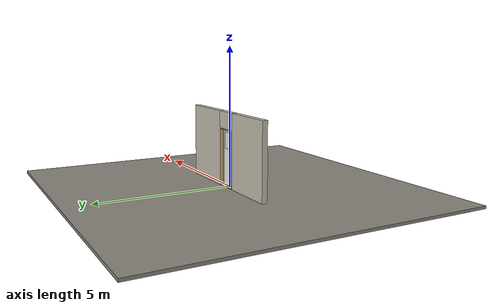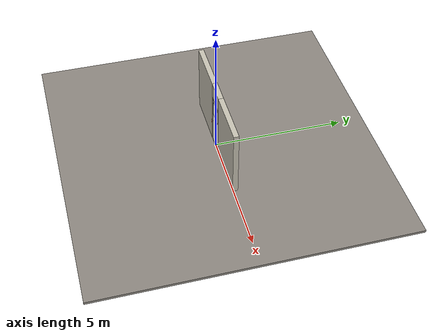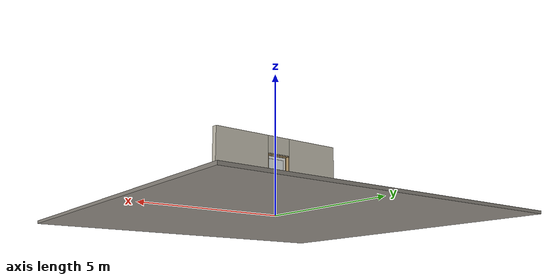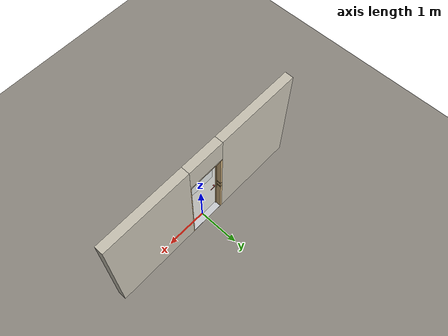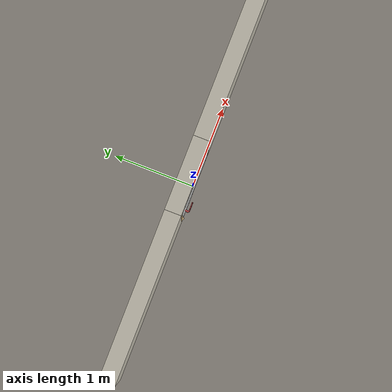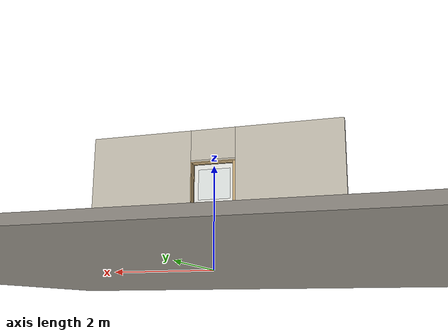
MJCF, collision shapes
<?xml version="1.0" ?>
<mujoco model="db0304_swing_single_minimal">
  <compiler angle="radian" meshdir="../../hardware" texturedir="../../textures" autolimits="true" inertiafromgeom="false"/>
  <option timestep="0.002" integrator="implicitfast" cone="elliptic" impratio="10" noslip_iterations="3">
    <flag multiccd="enable"/>
  </option>
  <size memory="16M"/>
  <default>
    <geom condim="4" solref="0.005 1" solimp="0.95 0.99 0.001"/>
    <joint solreflimit="0.005 1" solimplimit="0.95 0.99 0.001"/>
    <tendon solreflimit="0.005 1"/>
    <equality solref="0.002 1"/>
  </default>
  <visual>
    <headlight ambient="0.4 0.4 0.4" diffuse="0.7 0.7 0.7" specular="0.2 0.2 0.2"/>
    <quality shadowsize="4096"/>
    <map znear="0.01" zfar="60"/>
  </visual>
  <asset>
    <mesh name="lever_57205841c3" file="lever_57205841c3.obj"/>
    <material name="mat_floor" rgba="0.55 0.53 0.5 1" specular="0.2" shininess="0.15" reflectance="0"/>
    <material name="mat_wall" rgba="0.78 0.76 0.7 1" specular="0.2" shininess="0.1" reflectance="0"/>
    <material name="mat_leaf" rgba="0.93 0.93 0.91 1" specular="0.2" shininess="0.49" reflectance="0"/>
    <material name="mat_glass" rgba="0.85 0.92 0.95 0.25" specular="0.2" shininess="0.95" reflectance="0.1"/>
    <material name="mat_hinge" rgba="0.65 0.66 0.68 1" specular="0.74" shininess="0.5" reflectance="0.36"/>
    <material name="mat_op_black_matte_metal" rgba="0.05 0.05 0.05 1" specular="0.38" shininess="0.3" reflectance="0.12"/>
    <material name="mat_trim" rgba="0.85 0.66 0.3 1" specular="0.8" shininess="0.75" reflectance="0.4"/>
    <material name="mat_bolt" rgba="0.85 0.66 0.3 1" specular="0.8" shininess="0.75" reflectance="0.4"/>
    <material name="mat_night_latch" rgba="0.55 0.42 0.22 1" specular="0.74" shininess="0.45" reflectance="0.36"/>
    <material name="mat_deadbolt" rgba="0.85 0.66 0.3 1" specular="0.8" shininess="0.75" reflectance="0.4"/>
    <material name="mat_frame" rgba="0.82 0.7 0.5 1" specular="0.2" shininess="0.45" reflectance="0"/>
    <material name="mat_threshold" rgba="0.8 0.81 0.83 1" specular="0.8" shininess="0.6" reflectance="0.4"/>
    <material name="mat_numbers" rgba="0.05 0.05 0.05 1" specular="0.38" shininess="0.3" reflectance="0.12"/>
    <material name="mat_wreath" rgba="0.12 0.3 0.12 1" specular="0.2" shininess="0.05" reflectance="0"/>
    <material name="mat_wreath_hook" rgba="0.85 0.66 0.3 1" specular="0.8" shininess="0.75" reflectance="0.4"/>
    <texture name="skybox" type="skybox" builtin="gradient" rgb1="0.6 0.7 0.85" rgb2="0.9 0.92 0.95" width="256" height="256"/>
  </asset>
  <worldbody>
    <light name="sun" pos="1.5 -2.5 4" dir="-0.3 0.5 -0.8" directional="true" diffuse="0.8 0.8 0.8" specular="0.3 0.3 0.3" castshadow="true"/>
    <light name="fill" pos="-1.5 2.5 3" dir="0.3 -0.5 -0.7" directional="true" diffuse="0.35 0.35 0.4" castshadow="false"/>
    <camera name="robot_view" pos="0 -2.471187 1.734312" xyaxes="1 0 0 0 0.26963 0.962964" fovy="52"/>
    <camera name="far_view" pos="0 2.613187 1.734312" xyaxes="-1 0 0 0 -0.26963 0.962964" fovy="52"/>
    <camera name="iso" pos="-1.932062 -2.064437 2.141063" xyaxes="0.741536 -0.670913 0 0.242917 0.268487 0.932151" fovy="46"/>
    <camera name="detail_handle" pos="-0.0595 -0.877 1.245" xyaxes="0.97561 0.219512 0 -0.070934 0.315262 0.94635" fovy="38"/>
    <geom name="floor" type="box" size="6 6 0.05" pos="0 0 -0.05" material="mat_floor" group="0" contype="1" conaffinity="1" friction="0.8 0.005 0.0001" density="2400"/>
    <geom name="wall_left" type="box" size="1.02025 0.1 1.35" pos="-1.47975 0.071 1.35" material="mat_wall" group="0" contype="1" conaffinity="1" friction="0.6 0.005 0.0001" density="800"/>
    <geom name="wall_right" type="box" size="1.03525 0.1 1.35" pos="1.46475 0.071 1.35" material="mat_wall" group="0" contype="1" conaffinity="1" friction="0.6 0.005 0.0001" density="800"/>
    <geom name="wall_header" type="box" size="0.4445 0.1 0.303" pos="-0.015 0.071 2.397" material="mat_wall" group="0" contype="1" conaffinity="1" friction="0.6 0.005 0.0001" density="800"/>
    <geom name="jamb_hinge" type="box" size="0.0095 0.1 1.0225" pos="0.42 0.071 1.0225" material="mat_frame" group="0" contype="1" conaffinity="1" friction="0.6 0.005 0.0001" density="400"/>
    <geom name="strike_965_wall_n" type="box" size="0.0245 0.08075 0.0183" pos="-0.435 0.09025 0.965" material="mat_frame" group="0" contype="1" conaffinity="1" friction="0.6 0.005 0.0001" density="400"/>
    <geom name="strike_965_wall_p" type="box" size="0.0245 0.008 0.0183" pos="-0.435 -0.0175 0.965" material="mat_frame" group="0" contype="1" conaffinity="1" friction="0.6 0.005 0.0001" density="400"/>
    <geom name="strike_965_ramp" type="box" size="0.0245 0.018028 0.0183" pos="-0.440885 -0.02691 0.965" quat="0.957092 0 0 -0.289784" material="mat_frame" group="0" contype="1" conaffinity="1" friction="0.12 0.005 0.0001" density="400"/>
    <geom name="strike_965_back" type="box" size="0.013 0.0095 0.0183" pos="-0.4465 0 0.965" material="mat_frame" group="0" contype="1" conaffinity="1" friction="0.6 0.005 0.0001" density="400"/>
    <geom name="strike_1105_wall_n" type="box" size="0.0245 0.08075 0.0155" pos="-0.435 0.09025 1.105" material="mat_frame" group="0" contype="1" conaffinity="1" friction="0.6 0.005 0.0001" density="400"/>
    <geom name="strike_1105_wall_p" type="box" size="0.0245 0.00975 0.0155" pos="-0.435 -0.01925 1.105" material="mat_frame" group="0" contype="1" conaffinity="1" friction="0.6 0.005 0.0001" density="400"/>
    <geom name="strike_1105_back" type="box" size="0.0145 0.0095 0.0155" pos="-0.445 0 1.105" material="mat_frame" group="0" contype="1" conaffinity="1" friction="0.6 0.005 0.0001" density="400"/>
    <geom name="jamb_strike_0" type="box" size="0.0245 0.1 0.47335" pos="-0.435 0.071 0.47335" material="mat_frame" group="0" contype="1" conaffinity="1" friction="0.6 0.005 0.0001" density="400"/>
    <geom name="jamb_strike_1" type="box" size="0.0245 0.1 0.0531" pos="-0.435 0.071 1.0364" material="mat_frame" group="0" contype="1" conaffinity="1" friction="0.6 0.005 0.0001" density="400"/>
    <geom name="jamb_strike_2" type="box" size="0.0245 0.1 0.46225" pos="-0.435 0.071 1.58275" material="mat_frame" group="0" contype="1" conaffinity="1" friction="0.6 0.005 0.0001" density="400"/>
    <geom name="jamb_head" type="box" size="0.4445 0.1 0.0095" pos="-0.015 0.071 2.0545" material="mat_frame" group="0" contype="1" conaffinity="1" friction="0.6 0.005 0.0001" density="400"/>
    <geom name="head_stud" type="box" size="0.4445 0.1 0.015" pos="-0.015 0.071 2.079" material="mat_wall" group="0" contype="1" conaffinity="1" friction="0.6 0.005 0.0001" density="500"/>
    <geom name="stop_hinge" type="box" size="0.0055 0.016 1.0225" pos="0.405 0.0385 1.0225" material="mat_frame" group="0" contype="1" conaffinity="1" friction="0.6 0.005 0.0001" density="400"/>
    <geom name="stop_strike" type="box" size="0.0055 0.016 1.0225" pos="-0.405 0.0385 1.0225" material="mat_frame" group="0" contype="1" conaffinity="1" friction="0.6 0.005 0.0001" density="400"/>
    <geom name="stop_head" type="box" size="0.4105 0.016 0.0055" pos="0 0.0385 2.0395" material="mat_frame" group="0" contype="1" conaffinity="1" friction="0.6 0.005 0.0001" density="400"/>
    <geom name="threshold" type="box" size="0.4295 0.1 0.0065" pos="0 0.071 0.0065" material="mat_threshold" group="0" contype="1" conaffinity="1" friction="0.5 0.005 0.0001" density="2700"/>
    <site name="approach_point" pos="0 -1.5 0" quat="1 0 0 0" size="0.05" rgba="0.2 0.9 0.2 0.5" group="4"/>
    <site name="goal_point" pos="0 1.5 0" quat="1 0 0 0" size="0.05" rgba="0.2 0.9 0.2 0.5" group="4"/>
    <site name="door_plane_center" pos="0 0 1.0225" quat="1 0 0 0" size="0.02" rgba="0.2 0.9 0.2 0.5" group="4"/>
    <body name="leaf" pos="0.4105 0 0">
      <inertial pos="-0.4095 0 1.029731" mass="22.475552" quat="0.5 -0.5 -0.5 -0.5" diaginertia="1.241015649 7.678068864 8.911831762"/>
      <joint name="leaf_hinge" type="hinge" axis="0 0 1" pos="-0.003 -0.029 0" limited="true" range="0 2.268928" damping="0.210326" frictionloss="0.097273" armature="0.02"/>
      <geom name="leaf_slab" type="box" size="0.4065 0.022 1.012" pos="-0.4095 0 1.029" material="mat_leaf" group="0" contype="1" conaffinity="1" friction="0.4 0.005 0.0001" density="1"/>
      <geom name="leaf_glass_0" type="box" size="0.3165 0.0228 0.297528" pos="-0.4095 0 1.642272" material="mat_glass" group="1" contype="0" conaffinity="0" density="1"/>
      <site name="leaf_edge_mid" pos="-0.816 0 1.012" quat="1 0 0 0" size="0.02" rgba="0.2 0.9 0.2 0.5" group="4"/>
      <body name="leaf_handle" pos="-0.746 0 0.965">
        <inertial pos="0.019728 0 0" mass="0.753175" quat="0 0.707107 0.707107 0" diaginertia="0.000986163 0.002576944 0.003459458"/>
        <joint name="leaf_handle_hinge" type="hinge" axis="0 1 0" limited="true" range="0 0.87" damping="0.212417" frictionloss="0.042" stiffness="1" springref="-0.35" armature="0.01"/>
        <geom name="leaf_handle_lever_n" type="mesh" mesh="lever_57205841c3" pos="0 -0.022 0" quat="0 0 -0.707107 0.707107" material="mat_op_black_matte_metal" group="1" contype="0" conaffinity="0" density="3000"/>
        <geom name="leaf_handle_lever_col_n" type="capsule" size="0.007 0.053" pos="0.06 -0.077 0" quat="0.707107 0 0.707107 0" material="mat_op_black_matte_metal" group="3" contype="1" conaffinity="1" rgba="0.8 0.3 0.3 0.25" friction="0.7 0.01 0.0001" density="3000"/>
        <geom name="leaf_handle_hub_col_n" type="cylinder" size="0.012 0.022" pos="0 -0.052 0" quat="0.707107 -0.707107 0 0" material="mat_op_black_matte_metal" group="3" contype="1" conaffinity="1" rgba="0.8 0.3 0.3 0.25" friction="0.6 0.005 0.0001" density="3000"/>
        <geom name="leaf_handle_lever_p" type="mesh" mesh="lever_57205841c3" pos="0 0.022 0" quat="0 0 0.707107 0.707107" material="mat_op_black_matte_metal" group="1" contype="0" conaffinity="0" density="3000"/>
        <geom name="leaf_handle_lever_col_p" type="capsule" size="0.007 0.053" pos="0.06 0.077 0" quat="0.707107 0 0.707107 0" material="mat_op_black_matte_metal" group="3" contype="1" conaffinity="1" rgba="0.8 0.3 0.3 0.25" friction="0.7 0.01 0.0001" density="3000"/>
        <geom name="leaf_handle_hub_col_p" type="cylinder" size="0.012 0.022" pos="0 0.052 0" quat="0.707107 -0.707107 0 0" material="mat_op_black_matte_metal" group="3" contype="1" conaffinity="1" rgba="0.8 0.3 0.3 0.25" friction="0.6 0.005 0.0001" density="3000"/>
        <site name="leaf_handle_grip_n" pos="0.096 -0.077 0" quat="1 0 0 0" size="0.012" rgba="0.2 0.9 0.2 0.5" group="4"/>
        <site name="leaf_handle_grip_p" pos="0.096 0.077 0" quat="1 0 0 0" size="0.012" rgba="0.2 0.9 0.2 0.5" group="4"/>
      </body>
      <body name="leaf_latch_bolt" pos="-0.816 0 0.965">
        <inertial pos="0.0055 0 0" mass="0.074627" quat="0.92388 0.382683 0 0" diaginertia="0.000002271 0.000013255 0.000013255"/>
        <joint name="leaf_latch_bolt_slide" type="slide" axis="1 0 0" limited="true" range="0 0.019" damping="2" frictionloss="0.3" stiffness="600" springref="-0.01" armature="0.1"/>
        <geom name="leaf_latch_bolt_capsule" type="capsule" size="0.008 0.0165" pos="0.0055 0 0" quat="0.707107 0 -0.707107 0" material="mat_bolt" group="0" contype="1" conaffinity="1" friction="0.2 0.005 0.0001" density="8500"/>
      </body>
    </body>
  </worldbody>
  <tendon>
    <fixed name="leaf_latch_bolt_coupling" limited="true" range="0 10">
      <joint joint="leaf_latch_bolt_slide" coef="1"/>
      <joint joint="leaf_handle_hinge" coef="-0.023457"/>
    </fixed>
  </tendon>
  <sensor>
    <jointpos name="leaf_hinge_pos" joint="leaf_hinge"/>
    <jointvel name="leaf_hinge_vel" joint="leaf_hinge"/>
    <jointpos name="leaf_handle_hinge_pos" joint="leaf_handle_hinge"/>
    <jointvel name="leaf_handle_hinge_vel" joint="leaf_handle_hinge"/>
    <jointpos name="leaf_latch_bolt_slide_pos" joint="leaf_latch_bolt_slide"/>
    <jointvel name="leaf_latch_bolt_slide_vel" joint="leaf_latch_bolt_slide"/>
  </sensor>
</mujoco>
